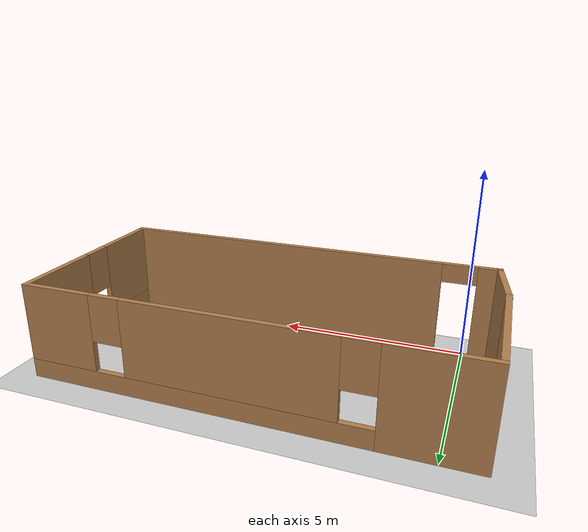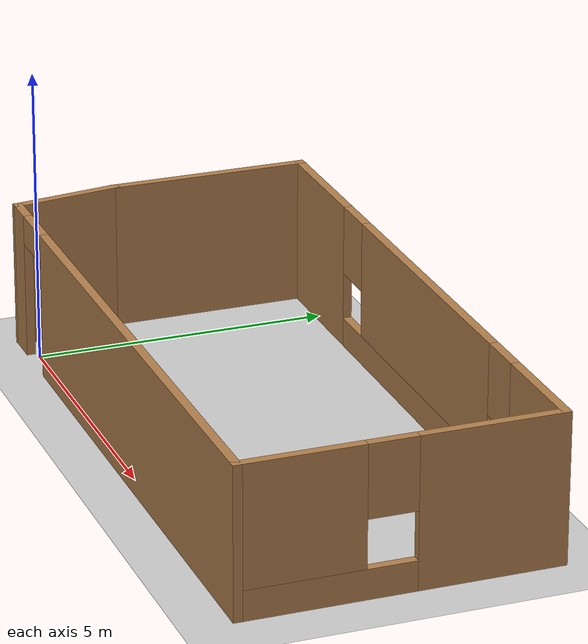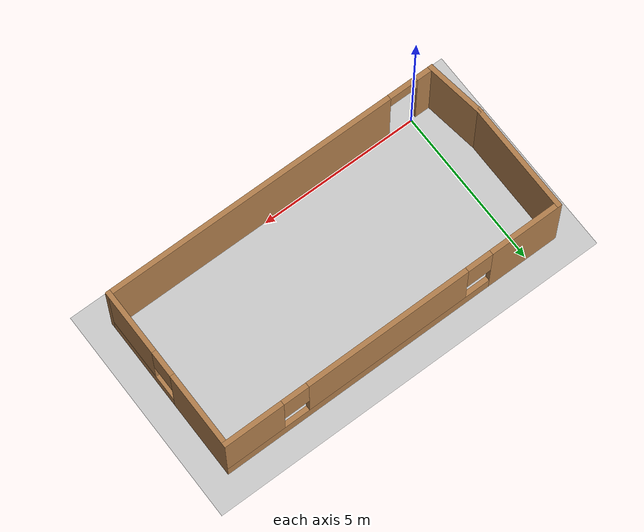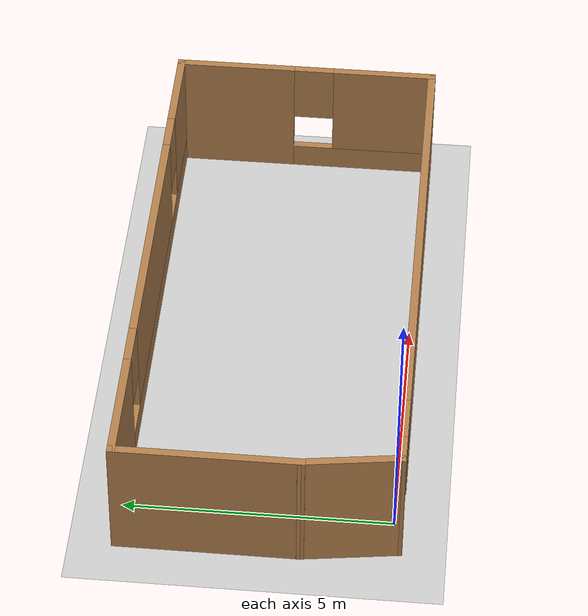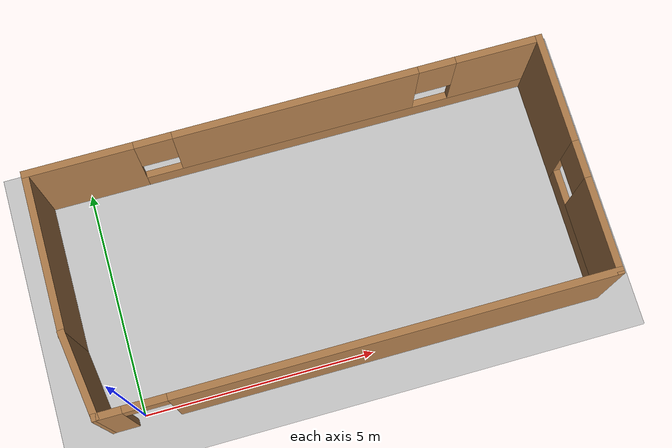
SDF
<sdf version="1.7">
 <world name="default">
  <light name="sun" type="directional">
   <pose>0 0 10 0 -0 0</pose>
   <diffuse>0.8 0.8 0.8 1</diffuse>
   <specular>0.2 0.2 0.2 1</specular>
   <attenuation>
    <range>1000</range>
    <constant>0.9</constant>
    <linear>0.01</linear>
    <quadratic>0.001</quadratic>
   </attenuation>
   <direction>-0.5 0.1 -0.9</direction>
   <spot><inner_angle>0</inner_angle><outer_angle>0</outer_angle><falloff>0</falloff></spot>
  </light>
  <model name="ground_plane">
   <static>1</static>
   <link name="link">
    <collision name="collision">
     <geometry><plane><normal>0 0 1</normal><size>100 100</size></plane></geometry>
     <surface>
      <contact><collide_bitmask>65535</collide_bitmask></contact>
      <friction><ode><mu>100</mu><mu2>50</mu2></ode></friction>
     </surface>
    </collision>
    <visual name="visual">
     <cast_shadows>0</cast_shadows>
     <geometry><plane><normal>0 0 1</normal><size>100 100</size></plane></geometry>
     <material>
      <script><uri>file://media/materials/scripts/gazebo.material</uri><name>Gazebo/Grey</name></script>
     </material>
    </visual>
   </link>
  </model>
  <gravity>0 0 -9.8</gravity>
  <magnetic_field>6e-06 2.3e-05 -4.2e-05</magnetic_field>
  <atmosphere type="adiabatic"/>
  <physics type="ode">
   <max_step_size>0.001</max_step_size>
   <real_time_factor>1</real_time_factor>
   <real_time_update_rate>1000</real_time_update_rate>
  </physics>
  <scene><ambient>0.4 0.4 0.4 1</ambient><background>0.7 0.7 0.7 1</background><shadows>1</shadows></scene>
  <spherical_coordinates>
   <surface_model>EARTH_WGS84</surface_model>
   <latitude_deg>0</latitude_deg>
   <longitude_deg>0</longitude_deg>
   <elevation>0</elevation>
   <heading_deg>0</heading_deg>
  </spherical_coordinates>
  <model name="hexafarm">
   <pose>4.4881 2.44487 0 0 -0 0</pose>
   <link name="Wall_10">
    <pose>0.004926 2.55493 0 0 -0 0</pose>
    <visual name="Wall_10_Visual_0">
     <pose>-4.34352 0 1.25 0 -0 0</pose>
     <geometry><box><size>2.31296 0.15 2.5</size></box></geometry>
     <material>
      <script><uri>file://media/materials/scripts/gazebo.material</uri><name>Gazebo/Wood</name></script>
      <ambient>1 1 1 1</ambient>
     </material>
     <meta><layer>0</layer></meta>
    </visual>
    <collision name="Wall_10_Collision_0">
     <geometry><box><size>2.31296 0.15 2.5</size></box></geometry>
     <pose>-4.34352 0 1.25 0 -0 0</pose>
    </collision>
    <visual name="Wall_10_Visual_1">
     <pose>1.15648 0 0.25 0 -0 0</pose>
     <geometry><box><size>8.68704 0.15 0.5</size></box></geometry>
     <material>
      <script><uri>file://media/materials/scripts/gazebo.material</uri><name>Gazebo/Wood</name></script>
      <ambient>1 1 1 1</ambient>
     </material>
     <meta><layer>0</layer></meta>
    </visual>
    <collision name="Wall_10_Collision_1">
     <geometry><box><size>8.68704 0.15 0.5</size></box></geometry>
     <pose>1.15648 0 0.25 0 -0 0</pose>
    </collision>
    <visual name="Wall_10_Visual_2">
     <pose>0.214766 0 1.5 0 -0 0</pose>
     <geometry><box><size>5.20362 0.15 2</size></box></geometry>
     <material>
      <script><uri>file://media/materials/scripts/gazebo.material</uri><name>Gazebo/Wood</name></script>
      <ambient>1 1 1 1</ambient>
     </material>
     <meta><layer>0</layer></meta>
    </visual>
    <collision name="Wall_10_Collision_2">
     <geometry><box><size>5.20362 0.15 2</size></box></geometry>
     <pose>0.214766 0 1.5 0 -0 0</pose>
    </collision>
    <visual name="Wall_10_Visual_3">
     <pose>4.55829 0 1.5 0 -0 0</pose>
     <geometry><box><size>1.88342 0.15 2</size></box></geometry>
     <material>
      <script><uri>file://media/materials/scripts/gazebo.material</uri><name>Gazebo/Wood</name></script>
      <ambient>1 1 1 1</ambient>
     </material>
     <meta><layer>0</layer></meta>
    </visual>
    <collision name="Wall_10_Collision_3">
     <geometry><box><size>1.88342 0.15 2</size></box></geometry>
     <pose>4.55829 0 1.5 0 -0 0</pose>
    </collision>
    <visual name="Wall_10_Visual_4">
     <pose>-2.78704 0 1.9 0 -0 0</pose>
     <geometry><box><size>0.8 0.15 1.2</size></box></geometry>
     <material>
      <script><uri>file://media/materials/scripts/gazebo.material</uri><name>Gazebo/Wood</name></script>
      <ambient>1 1 1 1</ambient>
     </material>
     <meta><layer>0</layer></meta>
    </visual>
    <collision name="Wall_10_Collision_4">
     <geometry><box><size>0.8 0.15 1.2</size></box></geometry>
     <pose>-2.78704 0 1.9 0 -0 0</pose>
    </collision>
    <visual name="Wall_10_Visual_5">
     <pose>3.21658 0 1.9 0 -0 0</pose>
     <geometry><box><size>0.8 0.15 1.2</size></box></geometry>
     <material>
      <script><uri>file://media/materials/scripts/gazebo.material</uri><name>Gazebo/Wood</name></script>
      <ambient>1 1 1 1</ambient>
     </material>
     <meta><layer>0</layer></meta>
    </visual>
    <collision name="Wall_10_Collision_5">
     <geometry><box><size>0.8 0.15 1.2</size></box></geometry>
     <pose>3.21658 0 1.9 0 -0 0</pose>
    </collision>
   </link>
   <link name="Wall_11">
    <pose>5.42993 0.004926 0 0 -0 -1.5708</pose>
    <visual name="Wall_11_Visual_0">
     <pose>-1.43087 0 1.25 0 -0 0</pose>
     <geometry><box><size>2.38825 0.15 2.5</size></box></geometry>
     <material>
      <script><uri>file://media/materials/scripts/gazebo.material</uri><name>Gazebo/Wood</name></script>
      <ambient>1 1 1 1</ambient>
     </material>
     <meta><layer>0</layer></meta>
    </visual>
    <collision name="Wall_11_Collision_0">
     <geometry><box><size>2.38825 0.15 2.5</size></box></geometry>
     <pose>-1.43087 0 1.25 0 -0 0</pose>
    </collision>
    <visual name="Wall_11_Visual_1">
     <pose>1.19413 0 0.25 0 -0 0</pose>
     <geometry><box><size>2.86175 0.15 0.5</size></box></geometry>
     <material>
      <script><uri>file://media/materials/scripts/gazebo.material</uri><name>Gazebo/Wood</name></script>
      <ambient>1 1 1 1</ambient>
     </material>
     <meta><layer>0</layer></meta>
    </visual>
    <collision name="Wall_11_Collision_1">
     <geometry><box><size>2.86175 0.15 0.5</size></box></geometry>
     <pose>1.19413 0 0.25 0 -0 0</pose>
    </collision>
    <visual name="Wall_11_Visual_2">
     <pose>1.59413 0 1.5 0 -0 0</pose>
     <geometry><box><size>2.06175 0.15 2</size></box></geometry>
     <material>
      <script><uri>file://media/materials/scripts/gazebo.material</uri><name>Gazebo/Wood</name></script>
      <ambient>1 1 1 1</ambient>
     </material>
     <meta><layer>0</layer></meta>
    </visual>
    <collision name="Wall_11_Collision_2">
     <geometry><box><size>2.06175 0.15 2</size></box></geometry>
     <pose>1.59413 0 1.5 0 -0 0</pose>
    </collision>
    <visual name="Wall_11_Visual_3">
     <pose>0.163252 0 1.9 0 -0 0</pose>
     <geometry><box><size>0.8 0.15 1.2</size></box></geometry>
     <material>
      <script><uri>file://media/materials/scripts/gazebo.material</uri><name>Gazebo/Wood</name></script>
      <ambient>1 1 1 1</ambient>
     </material>
     <meta><layer>0</layer></meta>
    </visual>
    <collision name="Wall_11_Collision_3">
     <geometry><box><size>0.8 0.15 1.2</size></box></geometry>
     <pose>0.163252 0 1.9 0 -0 0</pose>
    </collision>
   </link>
   <link name="Wall_12">
    <pose>0.129926 -2.54507 0 0 -0 3.14159</pose>
    <visual name="Wall_12_Visual_0">
     <pose>-0.751507 0 1.25 0 -0 0</pose>
     <geometry><box><size>9.24699 0.15 2.5</size></box></geometry>
     <material>
      <script><uri>file://media/materials/scripts/gazebo.material</uri><name>Gazebo/Wood</name></script>
      <ambient>1 1 1 1</ambient>
     </material>
     <meta><layer>0</layer></meta>
    </visual>
    <collision name="Wall_12_Collision_0">
     <geometry><box><size>9.24699 0.15 2.5</size></box></geometry>
     <pose>-0.751507 0 1.25 0 -0 0</pose>
    </collision>
    <visual name="Wall_12_Visual_1">
     <pose>5.07349 0 1.25 0 -0 0</pose>
     <geometry><box><size>0.603014 0.15 2.5</size></box></geometry>
     <material>
      <script><uri>file://media/materials/scripts/gazebo.material</uri><name>Gazebo/Wood</name></script>
      <ambient>1 1 1 1</ambient>
     </material>
     <meta><layer>0</layer></meta>
    </visual>
    <collision name="Wall_12_Collision_1">
     <geometry><box><size>0.603014 0.15 2.5</size></box></geometry>
     <pose>5.07349 0 1.25 0 -0 0</pose>
    </collision>
    <visual name="Wall_12_Visual_2">
     <pose>4.32199 0 2.25 0 -0 0</pose>
     <geometry><box><size>0.9 0.15 0.5</size></box></geometry>
     <material>
      <script><uri>file://media/materials/scripts/gazebo.material</uri><name>Gazebo/Wood</name></script>
      <ambient>1 1 1 1</ambient>
     </material>
     <meta><layer>0</layer></meta>
    </visual>
    <collision name="Wall_12_Collision_2">
     <geometry><box><size>0.9 0.15 0.5</size></box></geometry>
     <pose>4.32199 0 2.25 0 -0 0</pose>
    </collision>
   </link>
   <link name="Wall_13">
    <collision name="Wall_13_Collision">
     <geometry><box><size>1.91777 0.15 2.5</size></box></geometry>
     <pose>0 0 1.25 0 -0 0</pose>
    </collision>
    <visual name="Wall_13_Visual">
     <pose>0 0 1.25 0 -0 0</pose>
     <geometry><box><size>1.91777 0.15 2.5</size></box></geometry>
     <material>
      <script><uri>file://media/materials/scripts/gazebo.material</uri><name>Gazebo/Wood</name></script>
      <ambient>1 1 1 1</ambient>
     </material>
     <meta><layer>0</layer></meta>
    </visual>
    <pose>-5.29507 -1.67007 0 0 -0 1.71269</pose>
   </link>
   <link name="Wall_9">
    <collision name="Wall_9_Collision">
     <geometry><box><size>3.5 0.15 2.5</size></box></geometry>
     <pose>0 0 1.25 0 -0 0</pose>
    </collision>
    <visual name="Wall_9_Visual">
     <pose>0 0 1.25 0 -0 0</pose>
     <geometry><box><size>3.5 0.15 2.5</size></box></geometry>
     <material>
      <script><uri>file://media/materials/scripts/gazebo.material</uri><name>Gazebo/Wood</name></script>
      <ambient>1 1 1 1</ambient>
     </material>
     <meta><layer>0</layer></meta>
    </visual>
    <pose>-5.42007 0.879926 0 0 -0 1.5708</pose>
   </link>
   <static>1</static>
  </model>
 </world>
</sdf>
